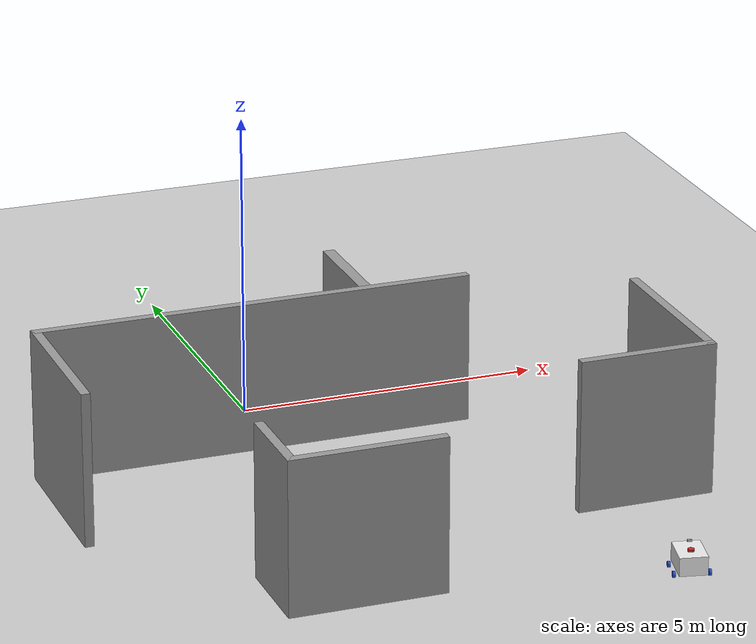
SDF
<sdf version="1.7">
 <world name="default">
  <light name="sun" type="directional">
   <pose>0 0 10 0 -0 0</pose>
   <diffuse>0.8 0.8 0.8 1</diffuse>
   <specular>0.2 0.2 0.2 1</specular>
   <attenuation>
    <range>1000</range>
    <constant>0.9</constant>
    <linear>0.01</linear>
    <quadratic>0.001</quadratic>
   </attenuation>
   <direction>-0.5 0.1 -0.9</direction>
   <spot><inner_angle>0</inner_angle><outer_angle>0</outer_angle><falloff>0</falloff></spot>
  </light>
  <model name="ground_plane">
   <static>1</static>
   <link name="link">
    <collision name="collision">
     <geometry><plane><normal>0 0 1</normal><size>100 100</size></plane></geometry>
     <surface>
      <contact><collide_bitmask>65535</collide_bitmask></contact>
      <friction><ode><mu>100</mu><mu2>50</mu2></ode></friction>
     </surface>
    </collision>
    <visual name="visual">
     <cast_shadows>0</cast_shadows>
     <geometry><plane><normal>0 0 1</normal><size>100 100</size></plane></geometry>
     <material>
      <script><uri>file://media/materials/scripts/gazebo.material</uri><name>Gazebo/Grey</name></script>
     </material>
    </visual>
   </link>
  </model>
  <gravity>0 0 -9.8</gravity>
  <magnetic_field>6e-06 2.3e-05 -4.2e-05</magnetic_field>
  <atmosphere type="adiabatic"/>
  <physics type="ode">
   <max_step_size>0.001</max_step_size>
   <real_time_factor>1</real_time_factor>
   <real_time_update_rate>1000</real_time_update_rate>
  </physics>
  <scene><ambient>0.4 0.4 0.4 1</ambient><background>0.7 0.7 0.7 1</background><shadows>1</shadows></scene>
  <audio><device>default</device></audio>
  <spherical_coordinates>
   <surface_model>EARTH_WGS84</surface_model>
   <latitude_deg>0</latitude_deg>
   <longitude_deg>0</longitude_deg>
   <elevation>0</elevation>
   <heading_deg>0</heading_deg>
  </spherical_coordinates>
  <model name="mybot_2wd">
   <link name="base_link">
    <inertial>
     <pose>-0.002222 0 0.16619 0 -0 0</pose>
     <mass>3.15</mass>
     <inertia>
      <ixx>0.0738743</ixx>
      <ixy>0</ixy>
      <ixz>0.00114667</ixz>
      <iyy>0.115949</iyy>
      <iyz>0</iyz>
      <izz>0.139007</izz>
     </inertia>
    </inertial>
    <collision name="base_link_fixed_joint_lump__chassis_collision">
     <pose>0 0 0.16 0 -0 0</pose>
     <geometry><box><size>0.6 0.44 0.3</size></box></geometry>
    </collision>
    <collision name="base_link_fixed_joint_lump__imu_link_collision_1">
     <pose>0 0 0.21 0 -0 0</pose>
     <geometry><box><size>0.03 0.03 0.01</size></box></geometry>
    </collision>
    <collision name="base_link_fixed_joint_lump__laser_frame_collision_2">
     <pose>-0.07 0 0.33 0 -0 0</pose>
     <geometry><cylinder><length>0.04</length><radius>0.05</radius></cylinder></geometry>
    </collision>
    <visual name="base_link_fixed_joint_lump__chassis_visual">
     <pose>0 0 0.16 0 -0 0</pose>
     <geometry><box><size>0.6 0.44 0.3</size></box></geometry>
     <material>
      <script><name>Gazebo/White</name><uri>file://media/materials/scripts/gazebo.material</uri></script>
     </material>
    </visual>
    <visual name="base_link_fixed_joint_lump__camera_link_visual_1">
     <pose>0.05 0 0.43 0 -0 0</pose>
     <geometry><box><size>0.03 0.07 0.035</size></box></geometry>
    </visual>
    <visual name="base_link_fixed_joint_lump__imu_link_visual_2">
     <pose>0 0 0.21 0 -0 0</pose>
     <geometry><box><size>0.03 0.03 0.01</size></box></geometry>
     <material>
      <script><name>Gazebo/Blue</name><uri>file://media/materials/scripts/gazebo.material</uri></script>
     </material>
    </visual>
    <visual name="base_link_fixed_joint_lump__laser_frame_visual_3">
     <pose>-0.07 0 0.33 0 -0 0</pose>
     <geometry><cylinder><length>0.04</length><radius>0.05</radius></cylinder></geometry>
     <material>
      <script><name>Gazebo/Red</name><uri>file://media/materials/scripts/gazebo.material</uri></script>
     </material>
    </visual>
    <sensor name="camera" type="camera">
     <visualize>1</visualize>
     <update_rate>30</update_rate>
     <camera>
      <horizontal_fov>1.047</horizontal_fov>
      <image><width>640</width><height>480</height><format>R8G8B8</format></image>
      <clip><near>0.1</near><far>10</far></clip>
     </camera>
     <plugin name="camera_controller" filename="libgazebo_ros_camera.so">
      <camera_name>camera</camera_name>
      <frame_name>camera_link_optical</frame_name>
     </plugin>
     <pose>0.05 0 0.43 0 -0 0</pose>
    </sensor>
    <sensor name="imu_sensor" type="imu">
     <always_on>1</always_on>
     <update_rate>50</update_rate>
     <visualize>0</visualize>
     <plugin name="imu_plugin" filename="libgazebo_ros_imu_sensor.so">
      <ros><argument>~/out:=imu/data</argument></ros>
      <output_type>sensor_msgs/Imu</output_type>
      <frame_name>imu_link</frame_name>
     </plugin>
     <pose>0 0 0.21 0 -0 0</pose>
    </sensor>
    <sensor name="laser" type="ray">
     <visualize>0</visualize>
     <update_rate>10</update_rate>
     <ray>
      <scan>
       <horizontal>
        <samples>360</samples>
        <resolution>1</resolution>
        <min_angle>-3.14</min_angle>
        <max_angle>3.14</max_angle>
       </horizontal>
       <vertical><samples>1</samples><min_angle>0</min_angle><max_angle>0</max_angle></vertical>
      </scan>
      <range><min>0.3</min><max>12</max><resolution>0.01</resolution></range>
     </ray>
     <plugin name="laser_controller" filename="libgazebo_ros_ray_sensor.so">
      <ros><argument>~/out:=scan</argument></ros>
      <output_type>sensor_msgs/LaserScan</output_type>
      <frame_name>laser_frame</frame_name>
     </plugin>
     <pose>-0.07 0 0.33 0 -0 0</pose>
    </sensor>
   </link>
   <joint name="left_front_wheel_joint" type="revolute">
    <pose relative_to="base_link">0.18 0.275 0 -1.5707 0 0</pose>
    <parent>base_link</parent>
    <child>left_front_wheel</child>
    <axis>
     <xyz>0 0 1</xyz>
     <limit><lower>-1e+16</lower><upper>1e+16</upper></limit>
     <dynamics><spring_reference>0</spring_reference><spring_stiffness>0</spring_stiffness></dynamics>
    </axis>
   </joint>
   <link name="left_front_wheel">
    <pose relative_to="left_front_wheel_joint">0 0 0 0 -0 0</pose>
    <inertial>
     <mass>0.2</mass>
     <inertia>
      <ixx>0.000151667</ixx>
      <ixy>0</ixy>
      <ixz>0</ixz>
      <iyy>0.000151667</iyy>
      <iyz>0</iyz>
      <izz>0.00025</izz>
     </inertia>
    </inertial>
    <collision name="left_front_wheel_collision">
     <geometry><cylinder><length>0.04</length><radius>0.05</radius></cylinder></geometry>
    </collision>
    <visual name="left_front_wheel_visual">
     <geometry><cylinder><length>0.04</length><radius>0.05</radius></cylinder></geometry>
     <material>
      <script><name>Gazebo/Blue</name><uri>file://media/materials/scripts/gazebo.material</uri></script>
     </material>
    </visual>
   </link>
   <joint name="left_rear_wheel_joint" type="revolute">
    <pose relative_to="base_link">-0.18 0.275 0 -1.5707 0 0</pose>
    <parent>base_link</parent>
    <child>left_rear_wheel</child>
    <axis>
     <xyz>0 0 1</xyz>
     <limit><lower>-1e+16</lower><upper>1e+16</upper></limit>
     <dynamics><spring_reference>0</spring_reference><spring_stiffness>0</spring_stiffness></dynamics>
    </axis>
   </joint>
   <link name="left_rear_wheel">
    <pose relative_to="left_rear_wheel_joint">0 0 0 0 -0 0</pose>
    <inertial>
     <mass>0.2</mass>
     <inertia>
      <ixx>0.000151667</ixx>
      <ixy>0</ixy>
      <ixz>0</ixz>
      <iyy>0.000151667</iyy>
      <iyz>0</iyz>
      <izz>0.00025</izz>
     </inertia>
    </inertial>
    <collision name="left_rear_wheel_collision">
     <geometry><cylinder><length>0.04</length><radius>0.05</radius></cylinder></geometry>
     <surface><friction><ode><mu>0.001</mu><mu2>0.001</mu2></ode></friction></surface>
    </collision>
    <visual name="left_rear_wheel_visual">
     <geometry><cylinder><length>0.04</length><radius>0.05</radius></cylinder></geometry>
     <material>
      <script><name>Gazebo/Blue</name><uri>file://media/materials/scripts/gazebo.material</uri></script>
     </material>
    </visual>
   </link>
   <joint name="right_front_wheel_joint" type="revolute">
    <pose relative_to="base_link">0.18 -0.275 0 1.5707 -0 0</pose>
    <parent>base_link</parent>
    <child>right_front_wheel</child>
    <axis>
     <xyz>0 0 -1</xyz>
     <limit><lower>-1e+16</lower><upper>1e+16</upper></limit>
     <dynamics><spring_reference>0</spring_reference><spring_stiffness>0</spring_stiffness></dynamics>
    </axis>
   </joint>
   <link name="right_front_wheel">
    <pose relative_to="right_front_wheel_joint">0 0 0 0 -0 0</pose>
    <inertial>
     <mass>0.2</mass>
     <inertia>
      <ixx>0.000151667</ixx>
      <ixy>0</ixy>
      <ixz>0</ixz>
      <iyy>0.000151667</iyy>
      <iyz>0</iyz>
      <izz>0.00025</izz>
     </inertia>
    </inertial>
    <collision name="right_front_wheel_collision">
     <geometry><cylinder><length>0.04</length><radius>0.05</radius></cylinder></geometry>
    </collision>
    <visual name="right_front_wheel_visual">
     <geometry><cylinder><length>0.04</length><radius>0.05</radius></cylinder></geometry>
     <material>
      <script><name>Gazebo/Blue</name><uri>file://media/materials/scripts/gazebo.material</uri></script>
     </material>
    </visual>
   </link>
   <joint name="right_rear_wheel_joint" type="revolute">
    <pose relative_to="base_link">-0.18 -0.275 0 1.5707 -0 0</pose>
    <parent>base_link</parent>
    <child>right_rear_wheel</child>
    <axis>
     <xyz>0 0 -1</xyz>
     <limit><lower>-1e+16</lower><upper>1e+16</upper></limit>
     <dynamics><spring_reference>0</spring_reference><spring_stiffness>0</spring_stiffness></dynamics>
    </axis>
   </joint>
   <link name="right_rear_wheel">
    <pose relative_to="right_rear_wheel_joint">0 0 0 0 -0 0</pose>
    <inertial>
     <mass>0.2</mass>
     <inertia>
      <ixx>0.000151667</ixx>
      <ixy>0</ixy>
      <ixz>0</ixz>
      <iyy>0.000151667</iyy>
      <iyz>0</iyz>
      <izz>0.00025</izz>
     </inertia>
    </inertial>
    <collision name="right_rear_wheel_collision">
     <geometry><cylinder><length>0.04</length><radius>0.05</radius></cylinder></geometry>
     <surface><friction><ode><mu>0.001</mu><mu2>0.001</mu2></ode></friction></surface>
    </collision>
    <visual name="right_rear_wheel_visual">
     <geometry><cylinder><length>0.04</length><radius>0.05</radius></cylinder></geometry>
     <material>
      <script><name>Gazebo/Blue</name><uri>file://media/materials/scripts/gazebo.material</uri></script>
     </material>
    </visual>
   </link>
   <static>0</static>
   <plugin name="gazebo_ros2_control" filename="libgazebo_ros2_control.so">
    <parameters>/home/shreyas/Desktop/ros2_ws/install/mybot_2wd/share/mybot_2wd/config/my_controllers.yaml</parameters>
    <parameters>/home/shreyas/Desktop/ros2_ws/install/mybot_2wd/share/mybot_2wd/config/gaz_ros2_ctl_use_sim.yaml</parameters>
   </plugin>
   <pose>4.24045 -8.12922 0.050001 3e-06 1e-05 1.35802</pose>
  </model>
  <model name="test_building">
   <pose>0.903765 -3.79705 0 0 -0 0</pose>
   <link name="Wall_0">
    <collision name="Wall_0_Collision">
     <geometry><box><size>2.75 0.15 2.5</size></box></geometry>
     <pose>0 0 1.25 0 -0 0</pose>
    </collision>
    <visual name="Wall_0_Visual">
     <pose>0 0 1.25 0 -0 0</pose>
     <geometry><box><size>2.75 0.15 2.5</size></box></geometry>
     <material>
      <script><uri>file://media/materials/scripts/gazebo.material</uri><name>Gazebo/Grey</name></script>
      <ambient>1 1 1 1</ambient>
     </material>
     <meta><layer>0</layer></meta>
    </visual>
    <pose>-4.79188 0.975502 0 0 -0 1.5708</pose>
   </link>
   <link name="Wall_1">
    <collision name="Wall_1_Collision">
     <geometry><box><size>7.25 0.15 2.5</size></box></geometry>
     <pose>0 0 1.25 0 -0 0</pose>
    </collision>
    <visual name="Wall_1_Visual">
     <pose>0 0 1.25 0 -0 0</pose>
     <geometry><box><size>7.25 0.15 2.5</size></box></geometry>
     <material>
      <script><uri>file://media/materials/scripts/gazebo.material</uri><name>Gazebo/Grey</name></script>
      <ambient>1 1 1 1</ambient>
     </material>
     <meta><layer>0</layer></meta>
    </visual>
    <pose>-1.24188 2.2755 0 0 -0 0</pose>
   </link>
   <link name="Wall_3">
    <collision name="Wall_3_Collision">
     <geometry><box><size>3 0.15 2.5</size></box></geometry>
     <pose>0 0 1.25 0 -0 0</pose>
    </collision>
    <visual name="Wall_3_Visual">
     <pose>0 0 1.25 0 -0 0</pose>
     <geometry><box><size>3 0.15 2.5</size></box></geometry>
     <material>
      <script><uri>file://media/materials/scripts/gazebo.material</uri><name>Gazebo/Grey</name></script>
      <ambient>1 1 1 1</ambient>
     </material>
     <meta><layer>0</layer></meta>
    </visual>
    <pose>4.79188 -0.333117 0 0 -0 -1.5708</pose>
   </link>
   <link name="Wall_4">
    <collision name="Wall_4_Collision">
     <geometry><box><size>2.25 0.15 2.5</size></box></geometry>
     <pose>0 0 1.25 0 -0 0</pose>
    </collision>
    <visual name="Wall_4_Visual">
     <pose>0 0 1.25 0 -0 0</pose>
     <geometry><box><size>2.25 0.15 2.5</size></box></geometry>
     <material>
      <script><uri>file://media/materials/scripts/gazebo.material</uri><name>Gazebo/Grey</name></script>
      <ambient>1 1 1 1</ambient>
     </material>
     <meta><layer>0</layer></meta>
    </visual>
    <pose>3.74188 -1.75812 0 0 -0 3.14159</pose>
   </link>
   <link name="Wall_6">
    <collision name="Wall_6_Collision">
     <geometry><box><size>1.5 0.15 2.5</size></box></geometry>
     <pose>0 0 1.25 0 -0 0</pose>
    </collision>
    <visual name="Wall_6_Visual">
     <pose>0 0 1.25 0 -0 0</pose>
     <geometry><box><size>1.5 0.15 2.5</size></box></geometry>
     <material>
      <script><uri>file://media/materials/scripts/gazebo.material</uri><name>Gazebo/Grey</name></script>
      <ambient>1 1 1 1</ambient>
     </material>
     <meta><layer>0</layer></meta>
    </visual>
    <pose>-2.72124 -3.0355 0 0 -0 -1.5708</pose>
   </link>
   <link name="Wall_7">
    <collision name="Wall_7_Collision">
     <geometry><box><size>2.5 0.15 2.5</size></box></geometry>
     <pose>0 0 1.25 0 -0 0</pose>
    </collision>
    <visual name="Wall_7_Visual">
     <pose>0 0 1.25 0 -0 0</pose>
     <geometry><box><size>2.5 0.15 2.5</size></box></geometry>
     <material>
      <script><uri>file://media/materials/scripts/gazebo.material</uri><name>Gazebo/Grey</name></script>
      <ambient>1 1 1 1</ambient>
     </material>
     <meta><layer>0</layer></meta>
    </visual>
    <pose>-1.54624 -3.7105 0 0 -0 0</pose>
   </link>
   <static>1</static>
  </model>
  <model name="docking_wall">
   <pose>2.0 0.0 0.0 0 0 0</pose>
   <static>1</static>
   <link name="wall_link">
    <collision name="wall_collision">
     <geometry><box><size>0.2 3.0 2.0</size></box></geometry>
     <pose>0 0 1.0 0 0 0</pose>
    </collision>
    <visual name="wall_visual">
     <geometry><box><size>0.2 3.0 2.0</size></box></geometry>
     <pose>0 0 1.0 0 0 0</pose>
     <material>
      <script><uri>file://media/materials/scripts/gazebo.material</uri><name>Gazebo/Grey</name></script>
     </material>
    </visual>
   </link>
  </model>
  <model name="Apriltag36_11_00000">
   <link name="main">
    <visual name="main_Visual">
     <geometry><box><size>0.16 0.16 0.01</size></box></geometry>
     <material>
      <script>
       <uri>model://Apriltag36_11_00000/materials/scripts</uri>
       <uri>model://Apriltag36_11_00000/materials/textures</uri>
       <name>Apriltag36_11_00000</name>
      </script>
     </material>
    </visual>
   </link>
   <static>1</static>
   <pose>2.0 0.0 0.75 0 -0 0</pose>
  </model>
 </world>
</sdf>
